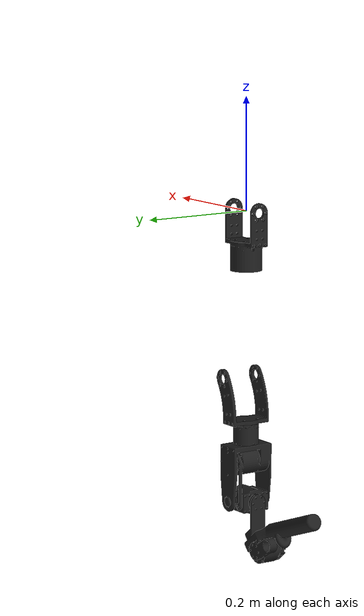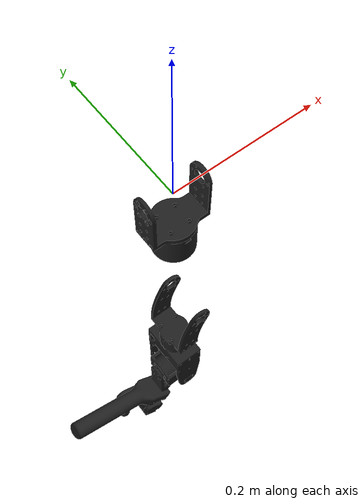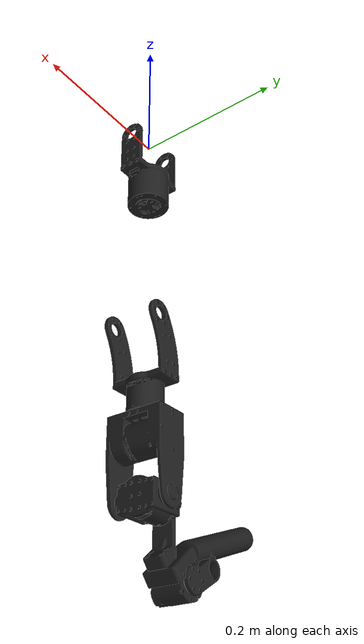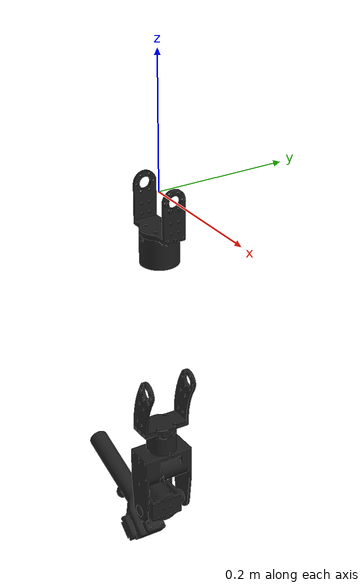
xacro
<?xml version="1.0" encoding="utf-8"?>
<robot name="leader" xmlns:xacro="http://ros.org/wiki/xacro">

  <xacro:arg name="variant"                         default=""/>          <!-- '', 'left', 'right' -->
  <xacro:arg name="arm_side"                        default=""/>          <!-- '', 'left', 'right' -->
  <xacro:arg name="use_world_frame"                 default="false"/>     <!-- 'true', 'false' -->
  <xacro:arg name="base_link_frame"                 default="base_link"/>

  <xacro:if value="$(arg use_world_frame)">
    <link name="world"/>
    <joint name="fixed" type="fixed">
      <parent
        link="world"/>
      <child
        link="$(arg base_link_frame)"/>
    </joint>
  </xacro:if> <!-- use_world_frame -->

  <xacro:include filename="$(find trossen_arm_description)/urdf/macros/_leader.urdf.xacro" />
  <xacro:include filename="$(find trossen_arm_description)/urdf/macros/_common.urdf.xacro" />

  <xacro:trossen_black/>

  <xacro:leader
    arm_side="$(arg arm_side)"
    variant="$(arg variant)"/>

</robot>

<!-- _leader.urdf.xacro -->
<robot name="leader" xmlns:xacro="http://ros.org/wiki/xacro">

  <xacro:property name="robot_model"
    value="leader"
    scope="local"/>
  <xacro:property name="dof"
    value="7"
    scope="local"/>

  <xacro:macro name="leader" params="variant arm_side:='' prefix:=''">

    <xacro:property name="mesh_directory" value="package://trossen_arm_description/meshes/${robot_model}"/>

    <link name="${prefix}base_link">
      <xacro:if value="${arm_side == 'right'}">
        <inertial>
          <origin
            xyz="0.00005199 -0.03429087 0.00005295"
            rpy="0 0 0" />
          <mass
            value="0.37290125" />
          <inertia
            ixx="0.00034804"
            ixy="-0.00000039"
            ixz="-0.00000003"
            iyy="0.00014057"
            iyz="-0.00000080"
            izz="0.00034074" />
        </inertial>
        <visual>
          <origin
            xyz="0 0 0"
            rpy="0 0 0" />
          <geometry>
            <mesh
              filename="${mesh_directory}/base_link_right.stl" />
          </geometry>
          <material name="trossen_black"/>
        </visual>
        <collision>
          <origin
            xyz="0 0 0"
            rpy="0 0 0" />
          <geometry>
            <mesh
              filename="${mesh_directory}/base_link_right.stl" />
          </geometry>
        </collision>
      </xacro:if>  <!-- arm_side == right -->
      <xacro:if value="${arm_side == 'left'}">
        <inertial>
          <origin
            xyz="-0.00002199 0.03351643 -0.00006205"
            rpy="0 0 0" />
          <mass
            value="1.87165014" />
          <inertia
            ixx="0.00209272"
            ixy="0.00000341"
            ixz="0.00000001"
            iyy="0.00299206"
            iyz="-0.00000068"
            izz="0.00207913" />
        </inertial>
        <visual>
          <origin
            xyz="0 0 0"
            rpy="0 0 0" />
          <geometry>
            <mesh
              filename="${mesh_directory}/base_link_left.stl" />
          </geometry>
          <material name="trossen_black"/>
        </visual>
        <collision>
          <origin
            xyz="0 0 0"
            rpy="0 0 0" />
          <geometry>
            <mesh
              filename="${mesh_directory}/base_link_left.stl" />
          </geometry>
        </collision>
      </xacro:if>  <!-- arm_side == left -->
    </link>

    <link name="${prefix}link_1">
      <xacro:if value="${arm_side == 'right'}">
        <inertial>
          <origin
            xyz="0.00331378 -0.03460068 -0.00004285"
            rpy="0 0 0" />
          <mass
            value="0.45236030" />
          <inertia
            ixx="0.00018930"
            ixy="0.00000360"
            ixz="-0.00000033"
            iyy="0.00043171"
            iyz="0.00000000"
            izz="0.00045089" />
        </inertial>
        <visual>
          <origin
            xyz="0 0 0"
            rpy="0 0 0" />
          <geometry>
            <mesh
              filename="${mesh_directory}/link_1_right.stl" />
          </geometry>
          <material name="trossen_black"/>
        </visual>
        <collision>
          <origin
            xyz="0 0 0"
            rpy="0 0 0" />
          <geometry>
            <mesh
              filename="${mesh_directory}/link_1_right.stl" />
          </geometry>
        </collision>
      </xacro:if>  <!-- arm_side == right -->
      <xacro:if value="${arm_side == 'left'}">
        <inertial>
          <origin
            xyz="0.00275057 0.05743620 -0.00006878"
            rpy="0 0 0" />
          <mass
            value="1.28114157" />
          <inertia
            ixx="0.00179991"
            ixy="-0.00001416"
            ixz="-0.00000010"
            iyy="0.00124087"
            iyz="0.00000433"
            izz="0.00154826" />
        </inertial>
        <visual>
          <origin
            xyz="0 0 0"
            rpy="0 0 0" />
          <geometry>
            <mesh
              filename="${mesh_directory}/link_1_left.stl" />
          </geometry>
          <material name="trossen_black"/>
        </visual>
        <collision>
          <origin
            xyz="0 0 0"
            rpy="0 0 0" />
          <geometry>
            <mesh
              filename="${mesh_directory}/link_1_left.stl" />
          </geometry>
        </collision>
      </xacro:if>  <!-- arm_side == left -->
    </link>

    <joint name="${prefix}joint_0" type="revolute">
      <parent link="${prefix}base_link" />
      <child link="${prefix}link_1" />
      <xacro:if value="${arm_side == 'right'}">
        <origin
          xyz="0 -0.05825 0"
          rpy="0 0 0" />
        <axis xyz="0 -1 0" />
        <limit
          effort="0"
          lower="${-pi / 2}"
          upper="${pi}"
          velocity="${2 * pi}" />
      </xacro:if>  <!-- arm_side == right -->
      <xacro:if value="${arm_side == 'left'}">
        <origin
          xyz="0 0.068 0"
          rpy="0 0 0" />
        <axis xyz="0 1 0" />
        <limit
          effort="0"
          lower="${-pi}"
          upper="${pi / 2}"
          velocity="${2 * pi}" />
      </xacro:if>  <!-- arm_side == left -->
    </joint>

    <!-- link 2 universal -->
    <link name="${prefix}link_2">
      <inertial>
        <origin
          xyz="-0.00000527 0.00001239 -0.08091014"
          rpy="0 0 0" />
        <mass value="0.33783172" />
        <inertia
          ixx="0.00031788"
          ixy="0.00000004"
          ixz="-0.00000049"
          iyy="0.00034942"
          iyz="-0.00000045"
          izz="0.00016037" />
      </inertial>
      <visual>
        <origin
          xyz="0 0 0"
          rpy="0 0 0" />
        <geometry>
          <mesh filename="${mesh_directory}/link_2.stl" />
        </geometry>
        <material name="trossen_black"/>
      </visual>
      <collision>
        <origin
          xyz="0 0 0"
          rpy="0 0 0" />
        <geometry>
          <mesh filename="${mesh_directory}/link_2.stl" />
        </geometry>
      </collision>
    </link>

    <joint name="${prefix}joint_1" type="revolute">
      <parent link="${prefix}link_1" />
      <child link="${prefix}link_2" />
      <axis xyz="1 0 0" />
      <xacro:if value="${arm_side == 'right'}">
        <origin
          xyz="0 -0.0365 0"
          rpy="0 0 0" />
        <limit
          effort="0"
          lower="${-pi}"
          upper="0"
          velocity="${2 * pi}" />
      </xacro:if>  <!-- arm_side == right -->
      <xacro:if value="${arm_side == 'left'}">
        <origin
          xyz="0 0.064 0"
          rpy="0 0 0" />
        <limit
          effort="0"
          lower="0"
          upper="${pi}"
          velocity="${2 * pi}" />
      </xacro:if>  <!-- arm_side == left -->
    </joint>

    <!-- link 3 right -->
    <link name="${prefix}link_3">
      <xacro:if value="${arm_side == 'right'}">
        <inertial>
          <origin
            xyz="0.01706827 0.00212153 -0.16679020"
            rpy="0 0 0" />
          <mass
            value="0.46940642" />
          <inertia
            ixx="0.00182642"
            ixy="-0.00000341"
            ixz="0.00015666"
            iyy="0.00165644"
            iyz="0.00002673"
            izz="0.00039819" />
        </inertial>
        <visual>
          <origin
            xyz="0 0 0"
            rpy="0 0 0" />
          <geometry>
            <mesh
              filename="${mesh_directory}/link_3_right.stl" />
          </geometry>
          <material name="trossen_black"/>
        </visual>
        <collision>
          <origin
            xyz="0 0 0"
            rpy="0 0 0" />
          <geometry>
            <mesh
              filename="${mesh_directory}/link_3_right.stl" />
          </geometry>
        </collision>
      </xacro:if>  <!-- arm_side == left -->
      <xacro:if value="${arm_side == 'left'}">
        <inertial>
          <origin
            xyz="0.01468991 0.00233199 -0.13173731"
            rpy="0 0 0" />
          <mass
            value="1.51522891" />
          <inertia
            ixx="0.00491799"
            ixy="-0.00001908"
            ixz="0.00061539"
            iyy="0.00521300"
            iyz="0.00008711"
            izz="0.00130863" />
        </inertial>
        <visual>
          <origin
            xyz="0 0 0"
            rpy="0 0 0" />
          <geometry>
            <mesh
              filename="${mesh_directory}/link_3_left.stl" />
          </geometry>
          <material name="trossen_black"/>
        </visual>
        <collision>
          <origin
            xyz="0 0 0"
            rpy="0 0 0" />
          <geometry>
            <mesh
              filename="${mesh_directory}/link_3_left.stl" />
          </geometry>
        </collision>
      </xacro:if>  <!-- arm_side == left -->
    </link>

    <joint name="${prefix}joint_2" type="revolute">
      <origin
        xyz="0 0 -0.106"
        rpy="0 0 0" />
      <parent link="${prefix}link_2" />
      <child link="${prefix}link_3" />
      <axis xyz="0 0 -1" />
      <limit
        effort="0"
        lower="${-pi / 2}"
        upper="${pi / 2}"
        velocity="${2 * pi}" />
    </joint>

    <link name="${prefix}link_4">
      <inertial>
        <origin
          xyz="-0.01912502 0.00002771 -0.08994190"
          rpy="0 0 0" />
        <mass value="0.19153172" />
        <inertia
          ixx="0.00019027"
          ixy="-0.00000010"
          ixz="-0.00001489"
          iyy="0.00015938"
          iyz="-0.00000047"
          izz="0.00008565" />
      </inertial>
      <visual>
        <origin
          xyz="0 0 0"
          rpy="0 0 0" />
        <geometry>
          <mesh filename="${mesh_directory}/link_4.stl" />
        </geometry>
        <material name="trossen_black"/>
      </visual>
      <collision>
        <origin
          xyz="0 0 0"
          rpy="0 0 0" />
        <geometry>
          <mesh filename="${mesh_directory}/link_4.stl" />
        </geometry>
      </collision>
    </link>

    <joint name="${prefix}joint_3" type="revolute">
      <origin
        xyz="0.02 0 -0.1938"
        rpy="0 0 0" />
      <parent link="${prefix}link_3" />
      <child link="${prefix}link_4" />
      <xacro:if value="${arm_side == 'right'}">
        <axis xyz="0 -1 0" />
        <limit
          effort="0"
          lower="0"
          upper="${3 * pi / 4}"
          velocity="${2 * pi}" />
      </xacro:if>  <!-- arm_side == right -->
      <xacro:if value="${arm_side == 'left'}">
        <axis xyz="0 1 0" />
        <limit
          effort="0"
          lower="${-3 * pi / 4}"
          upper="0"
          velocity="${2 * pi}" />
      </xacro:if>  <!-- arm_side == left -->
    </joint>

    <link name="${prefix}link_5">
      <inertial>
        <origin
          xyz="-0.00025767 0.00302328 -0.03375968"
          rpy="0 0 0" />
        <mass value="0.24163171" />
        <inertia
          ixx="0.00022638"
          ixy="0.00000100"
          ixz="-0.00000442"
          iyy="0.00016124"
          iyz="0.00000725"
          izz="0.00013726" />
      </inertial>
      <visual>
        <origin
          xyz="0 0 0"
          rpy="0 0 0" />
        <geometry>
          <mesh filename="${mesh_directory}/link_5.stl" />
        </geometry>
        <material name="trossen_black"/>
      </visual>
      <collision>
        <origin
          xyz="0 0 0"
          rpy="0 0 0" />
        <geometry>
          <mesh filename="${mesh_directory}/link_5.stl" />
        </geometry>
      </collision>
    </link>

    <joint name="${prefix}joint_4" type="revolute">
      <origin
        xyz="-0.02 0 -0.1185"
        rpy="0 0 0" />
      <parent link="${prefix}link_4" />
      <child link="${prefix}link_5" />
      <axis xyz="0 0 -1" />
      <limit
        effort="0"
        lower="${-pi / 2}"
        upper="${pi / 2}"
        velocity="${2 * pi}" />
    </joint>

    <link name="${prefix}link_6">
      <inertial>
        <origin
          xyz="-0.01044529 0.00000910 0.00011242"
          rpy="0 0 0" />
        <mass value="0.18731697" />
        <inertia
          ixx="0.00006195"
          ixy="-0.00000001"
          ixz="-0.00000032"
          iyy="0.00005051"
          iyz="0.00000000"
          izz="0.00006440" />
      </inertial>
      <visual>
        <origin
          xyz="0 0 0"
          rpy="0 0 0" />
        <geometry>
          <mesh filename="${mesh_directory}/link_6.stl" />
        </geometry>
        <material name="trossen_black"/>
      </visual>
      <collision>
        <origin
          xyz="0 0 0"
          rpy="0 0 0" />
        <geometry>
          <mesh filename="${mesh_directory}/link_6.stl" />
        </geometry>
      </collision>
    </link>

    <joint name="${prefix}joint_5" type="revolute">
      <origin
        xyz="0 0 -0.101"
        rpy="0 0 0" />
      <parent link="${prefix}link_5" />
      <child link="${prefix}link_6" />
      <axis xyz="0 1 0" />
      <limit
        effort="0"
        lower="${-pi / 4}"
        upper="${pi / 4}"
        velocity="${2 * pi}" />
    </joint>

    <link name="${prefix}link_7">
      <inertial>
        <origin
          xyz="-0.04169427 0.00058029 -0.06323582"
          rpy="0 0 0" />
        <mass value="0.23686287" />
        <inertia
          ixx="0.00019957"
          ixy="-0.00000203"
          ixz="0.00016948"
          iyy="0.00053905"
          iyz="0.00000192"
          izz="0.00038760" />
      </inertial>
      <visual>
        <origin
          xyz="0 0 0"
          rpy="0 0 0" />
        <geometry>
          <mesh filename="${mesh_directory}/link_7.stl" />
        </geometry>
        <material name="trossen_black"/>
      </visual>
      <collision>
        <origin
          xyz="0 0 0"
          rpy="0 0 0" />
        <geometry>
          <mesh filename="${mesh_directory}/link_7.stl" />
        </geometry>
      </collision>
    </link>

    <joint name="${prefix}joint_6" type="revolute">
      <origin
        xyz="-0.034 0 0"
        rpy="0 0 0" />
      <parent link="${prefix}link_6" />
      <child link="${prefix}link_7" />
      <axis xyz="1 0 0" />
      <limit
        effort="0"
        lower="${-pi / 2}"
        upper="${pi / 2}"
        velocity="${2 * pi}" />
    </joint>

    <link name="link_8">
      <inertial>
        <origin
          xyz="-0.01502064 0.00191435 0.00656522"
          rpy="0 0 0" />
        <mass value="0.00915397" />
        <inertia
          ixx="0.00000120"
          ixy="-0.00000021"
          ixz="0.00000102"
          iyy="0.00000385"
          iyz="0.00000011"
          izz="0.00000284" />
      </inertial>
      <visual>
        <origin
          xyz="0 0 0"
          rpy="0 0 0" />
        <geometry>
          <mesh filename="${mesh_directory}/link_8.stl" />
        </geometry>
        <material name="trossen_black"/>
      </visual>
      <collision>
        <origin
          xyz="0 0 0"
          rpy="0 0 0" />
        <geometry>
          <mesh filename="${mesh_directory}/link_8.stl" />
        </geometry>
      </collision>
    </link>

    <joint name="joint_7" type="revolute">
      <origin
        xyz="-0.02847106 0.01930000 -0.07900135"
        rpy="0 0 0" />
      <parent link="link_7" />
      <child link="link_8" />
      <axis xyz="0 1 0" />
      <limit
        lower="-1.5707963267948966"
        upper="1.5707963267948966"
        effort="0"
        velocity="0" />
    </joint>

    <joint name="${prefix}ee_gripper" type="fixed">
      <origin
        xyz="-0.021 0 -0.200062"
        rpy="0 0 0" />
      <parent link="${prefix}link_8" />
      <child link="${prefix}ee_gripper_link" />
    </joint>

    <link name="${prefix}ee_gripper_link" />

  </xacro:macro>  <!-- leader -->

</robot>

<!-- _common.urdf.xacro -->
<robot name="common" xmlns:xacro="http://ros.org/wiki/xacro">

  <xacro:macro name="trossen_black">
    <material name="trossen_black">
      <texture filename="package://trossen_arm_description/meshes/trossen_black.png"/>
    </material>
  </xacro:macro>  <!-- trossen_black -->

  <xacro:macro name="maple_tabletop">
    <material name="maple_tabletop">
      <texture filename="package://trossen_arm_description/meshes/maple_tabletop.png"/>
    </material>
  </xacro:macro>  <!-- maple_tabletop -->

</robot>
